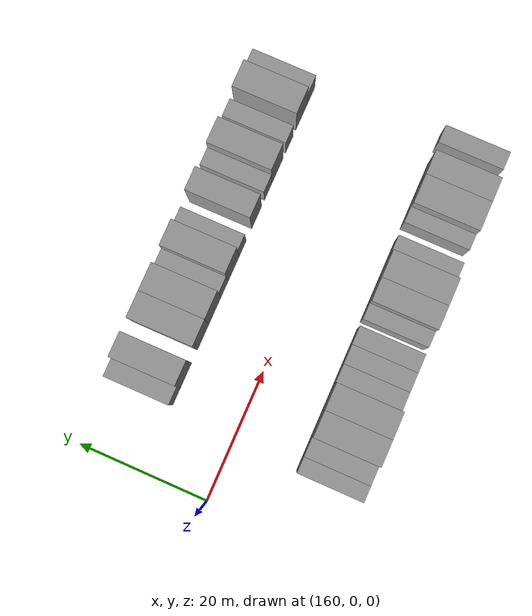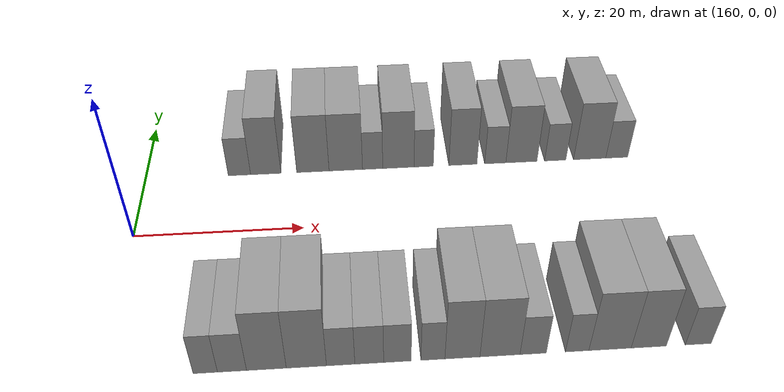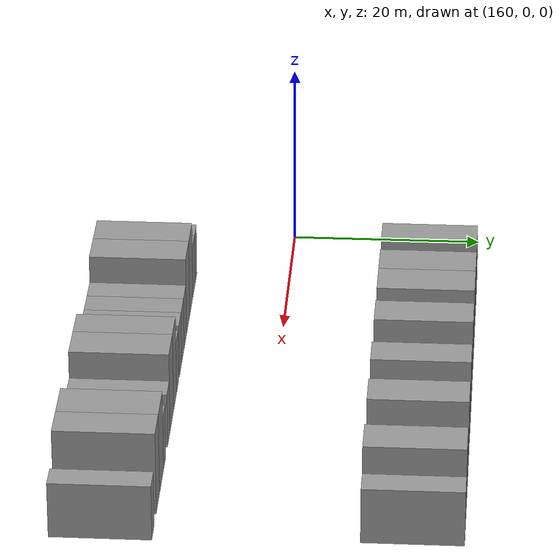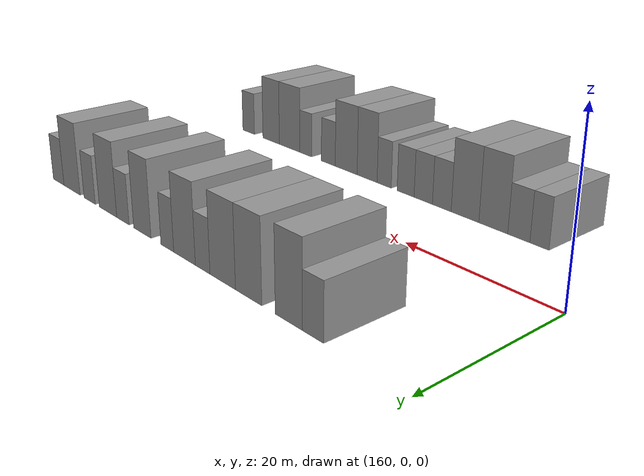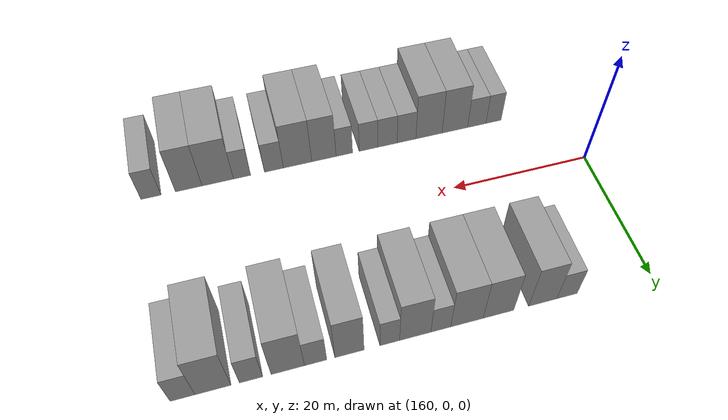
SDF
<sdf version="1.6">
 <world name="default">
  <model name="building_41">
   <static>1</static>
   <pose>171.7632 15.0000 0 0.000000 0.000000 1.570796</pose>
   <link name="link">
    <pose>0 0 3.00 0 0 0</pose>
    <collision name="collision"><geometry><box><size>10.0000 2.8186 6.0000</size></box></geometry></collision>
    <visual name="visual">
     <cast_shadows>0</cast_shadows>
     <geometry><box><size>10.0000 2.8186 6.0000</size></box></geometry>
     <material>
      <script>
       <uri>model://grey_wall/materials/scripts</uri>
       <uri>model://grey_wall/materials/textures</uri>
       <name>vrc/grey_wall</name>
      </script>
     </material>
    </visual>
   </link>
  </model>
  <model name="building_42">
   <static>1</static>
   <pose>175.0899 15.0000 0 0.000000 0.000000 1.570796</pose>
   <link name="link">
    <pose>0 0 4.50 0 0 0</pose>
    <collision name="collision"><geometry><box><size>10.0000 3.8349 9.0000</size></box></geometry></collision>
    <visual name="visual">
     <cast_shadows>0</cast_shadows>
     <geometry><box><size>10.0000 3.8349 9.0000</size></box></geometry>
     <material>
      <script>
       <uri>model://grey_wall/materials/scripts</uri>
       <uri>model://grey_wall/materials/textures</uri>
       <name>vrc/grey_wall</name>
      </script>
     </material>
    </visual>
   </link>
  </model>
  <model name="building_43">
   <static>1</static>
   <pose>181.0642 15.0000 0 0.000000 0.000000 1.570796</pose>
   <link name="link">
    <pose>0 0 4.50 0 0 0</pose>
    <collision name="collision"><geometry><box><size>10.0000 4.1136 9.0000</size></box></geometry></collision>
    <visual name="visual">
     <cast_shadows>0</cast_shadows>
     <geometry><box><size>10.0000 4.1136 9.0000</size></box></geometry>
     <material>
      <script>
       <uri>model://grey_wall/materials/scripts</uri>
       <uri>model://grey_wall/materials/textures</uri>
       <name>vrc/grey_wall</name>
      </script>
     </material>
    </visual>
   </link>
  </model>
  <model name="building_44">
   <static>1</static>
   <pose>185.2542 15.0000 0 0.000000 0.000000 1.570796</pose>
   <link name="link">
    <pose>0 0 4.50 0 0 0</pose>
    <collision name="collision"><geometry><box><size>10.0000 4.2662 9.0000</size></box></geometry></collision>
    <visual name="visual">
     <cast_shadows>0</cast_shadows>
     <geometry><box><size>10.0000 4.2662 9.0000</size></box></geometry>
     <material>
      <script>
       <uri>model://grey_wall/materials/scripts</uri>
       <uri>model://grey_wall/materials/textures</uri>
       <name>vrc/grey_wall</name>
      </script>
     </material>
    </visual>
   </link>
  </model>
  <model name="building_45">
   <static>1</static>
   <pose>188.6804 15.0000 0 0.000000 0.000000 1.570796</pose>
   <link name="link">
    <pose>0 0 3.00 0 0 0</pose>
    <collision name="collision"><geometry><box><size>10.0000 2.5863 6.0000</size></box></geometry></collision>
    <visual name="visual">
     <cast_shadows>0</cast_shadows>
     <geometry><box><size>10.0000 2.5863 6.0000</size></box></geometry>
     <material>
      <script>
       <uri>model://grey_wall/materials/scripts</uri>
       <uri>model://grey_wall/materials/textures</uri>
       <name>vrc/grey_wall</name>
      </script>
     </material>
    </visual>
   </link>
  </model>
  <model name="building_46">
   <static>1</static>
   <pose>191.9830 15.0000 0 0.000000 0.000000 1.570796</pose>
   <link name="link">
    <pose>0 0 4.50 0 0 0</pose>
    <collision name="collision"><geometry><box><size>10.0000 4.0189 9.0000</size></box></geometry></collision>
    <visual name="visual">
     <cast_shadows>0</cast_shadows>
     <geometry><box><size>10.0000 4.0189 9.0000</size></box></geometry>
     <material>
      <script>
       <uri>model://grey_wall/materials/scripts</uri>
       <uri>model://grey_wall/materials/textures</uri>
       <name>vrc/grey_wall</name>
      </script>
     </material>
    </visual>
   </link>
  </model>
  <model name="building_47">
   <static>1</static>
   <pose>195.2415 15.0000 0 0.000000 0.000000 1.570796</pose>
   <link name="link">
    <pose>0 0 3.00 0 0 0</pose>
    <collision name="collision"><geometry><box><size>10.0000 2.4981 6.0000</size></box></geometry></collision>
    <visual name="visual">
     <cast_shadows>0</cast_shadows>
     <geometry><box><size>10.0000 2.4981 6.0000</size></box></geometry>
     <material>
      <script>
       <uri>model://grey_wall/materials/scripts</uri>
       <uri>model://grey_wall/materials/textures</uri>
       <name>vrc/grey_wall</name>
      </script>
     </material>
    </visual>
   </link>
  </model>
  <model name="building_48">
   <static>1</static>
   <pose>200.3131 15.0000 0 0.000000 0.000000 1.570796</pose>
   <link name="link">
    <pose>0 0 4.50 0 0 0</pose>
    <collision name="collision"><geometry><box><size>10.0000 3.6450 9.0000</size></box></geometry></collision>
    <visual name="visual">
     <cast_shadows>0</cast_shadows>
     <geometry><box><size>10.0000 3.6450 9.0000</size></box></geometry>
     <material>
      <script>
       <uri>model://grey_wall/materials/scripts</uri>
       <uri>model://grey_wall/materials/textures</uri>
       <name>vrc/grey_wall</name>
      </script>
     </material>
    </visual>
   </link>
  </model>
  <model name="building_49">
   <static>1</static>
   <pose>204.5103 15.0000 0 0.000000 0.000000 1.570796</pose>
   <link name="link">
    <pose>0 0 3.00 0 0 0</pose>
    <collision name="collision"><geometry><box><size>10.0000 2.7494 6.0000</size></box></geometry></collision>
    <visual name="visual">
     <cast_shadows>0</cast_shadows>
     <geometry><box><size>10.0000 2.7494 6.0000</size></box></geometry>
     <material>
      <script>
       <uri>model://grey_wall/materials/scripts</uri>
       <uri>model://grey_wall/materials/textures</uri>
       <name>vrc/grey_wall</name>
      </script>
     </material>
    </visual>
   </link>
  </model>
  <model name="building_50">
   <static>1</static>
   <pose>207.9162 15.0000 0 0.000000 0.000000 1.570796</pose>
   <link name="link">
    <pose>0 0 4.50 0 0 0</pose>
    <collision name="collision"><geometry><box><size>10.0000 4.0623 9.0000</size></box></geometry></collision>
    <visual name="visual">
     <cast_shadows>0</cast_shadows>
     <geometry><box><size>10.0000 4.0623 9.0000</size></box></geometry>
     <material>
      <script>
       <uri>model://grey_wall/materials/scripts</uri>
       <uri>model://grey_wall/materials/textures</uri>
       <name>vrc/grey_wall</name>
      </script>
     </material>
    </visual>
   </link>
  </model>
  <model name="building_51">
   <static>1</static>
   <pose>212.3395 15.0000 0 0.000000 0.000000 1.570796</pose>
   <link name="link">
    <pose>0 0 3.00 0 0 0</pose>
    <collision name="collision"><geometry><box><size>10.0000 2.7843 6.0000</size></box></geometry></collision>
    <visual name="visual">
     <cast_shadows>0</cast_shadows>
     <geometry><box><size>10.0000 2.7843 6.0000</size></box></geometry>
     <material>
      <script>
       <uri>model://grey_wall/materials/scripts</uri>
       <uri>model://grey_wall/materials/textures</uri>
       <name>vrc/grey_wall</name>
      </script>
     </material>
    </visual>
   </link>
  </model>
  <model name="building_52">
   <static>1</static>
   <pose>216.8495 15.0000 0 0.000000 0.000000 1.570796</pose>
   <link name="link">
    <pose>0 0 4.50 0 0 0</pose>
    <collision name="collision"><geometry><box><size>10.0000 4.2358 9.0000</size></box></geometry></collision>
    <visual name="visual">
     <cast_shadows>0</cast_shadows>
     <geometry><box><size>10.0000 4.2358 9.0000</size></box></geometry>
     <material>
      <script>
       <uri>model://grey_wall/materials/scripts</uri>
       <uri>model://grey_wall/materials/textures</uri>
       <name>vrc/grey_wall</name>
      </script>
     </material>
    </visual>
   </link>
  </model>
  <model name="building_53">
   <static>1</static>
   <pose>220.4136 15.0000 0 0.000000 0.000000 1.570796</pose>
   <link name="link">
    <pose>0 0 3.00 0 0 0</pose>
    <collision name="collision"><geometry><box><size>10.0000 2.8923 6.0000</size></box></geometry></collision>
    <visual name="visual">
     <cast_shadows>0</cast_shadows>
     <geometry><box><size>10.0000 2.8923 6.0000</size></box></geometry>
     <material>
      <script>
       <uri>model://grey_wall/materials/scripts</uri>
       <uri>model://grey_wall/materials/textures</uri>
       <name>vrc/grey_wall</name>
      </script>
     </material>
    </visual>
   </link>
  </model>
  <model name="building_96">
   <static>1</static>
   <pose>170.2436 -15.0000 0 0.000000 0.000000 1.570796</pose>
   <link name="link">
    <pose>0 0 3.00 0 0 0</pose>
    <collision name="collision"><geometry><box><size>10.0000 2.4434 6.0000</size></box></geometry></collision>
    <visual name="visual">
     <cast_shadows>0</cast_shadows>
     <geometry><box><size>10.0000 2.4434 6.0000</size></box></geometry>
     <material>
      <script>
       <uri>model://grey_wall/materials/scripts</uri>
       <uri>model://grey_wall/materials/textures</uri>
       <name>vrc/grey_wall</name>
      </script>
     </material>
    </visual>
   </link>
  </model>
  <model name="building_97">
   <static>1</static>
   <pose>172.9290 -15.0000 0 0.000000 0.000000 1.570796</pose>
   <link name="link">
    <pose>0 0 3.00 0 0 0</pose>
    <collision name="collision"><geometry><box><size>10.0000 2.9273 6.0000</size></box></geometry></collision>
    <visual name="visual">
     <cast_shadows>0</cast_shadows>
     <geometry><box><size>10.0000 2.9273 6.0000</size></box></geometry>
     <material>
      <script>
       <uri>model://grey_wall/materials/scripts</uri>
       <uri>model://grey_wall/materials/textures</uri>
       <name>vrc/grey_wall</name>
      </script>
     </material>
    </visual>
   </link>
  </model>
  <model name="building_98">
   <static>1</static>
   <pose>176.4029 -15.0000 0 0.000000 0.000000 1.570796</pose>
   <link name="link">
    <pose>0 0 4.50 0 0 0</pose>
    <collision name="collision"><geometry><box><size>10.0000 4.0204 9.0000</size></box></geometry></collision>
    <visual name="visual">
     <cast_shadows>0</cast_shadows>
     <geometry><box><size>10.0000 4.0204 9.0000</size></box></geometry>
     <material>
      <script>
       <uri>model://grey_wall/materials/scripts</uri>
       <uri>model://grey_wall/materials/textures</uri>
       <name>vrc/grey_wall</name>
      </script>
     </material>
    </visual>
   </link>
  </model>
  <model name="building_99">
   <static>1</static>
   <pose>180.4525 -15.0000 0 0.000000 0.000000 1.570796</pose>
   <link name="link">
    <pose>0 0 4.50 0 0 0</pose>
    <collision name="collision"><geometry><box><size>10.0000 4.0789 9.0000</size></box></geometry></collision>
    <visual name="visual">
     <cast_shadows>0</cast_shadows>
     <geometry><box><size>10.0000 4.0789 9.0000</size></box></geometry>
     <material>
      <script>
       <uri>model://grey_wall/materials/scripts</uri>
       <uri>model://grey_wall/materials/textures</uri>
       <name>vrc/grey_wall</name>
      </script>
     </material>
    </visual>
   </link>
  </model>
  <model name="building_100">
   <static>1</static>
   <pose>183.9404 -15.0000 0 0.000000 0.000000 1.570796</pose>
   <link name="link">
    <pose>0 0 3.00 0 0 0</pose>
    <collision name="collision"><geometry><box><size>10.0000 2.8969 6.0000</size></box></geometry></collision>
    <visual name="visual">
     <cast_shadows>0</cast_shadows>
     <geometry><box><size>10.0000 2.8969 6.0000</size></box></geometry>
     <material>
      <script>
       <uri>model://grey_wall/materials/scripts</uri>
       <uri>model://grey_wall/materials/textures</uri>
       <name>vrc/grey_wall</name>
      </script>
     </material>
    </visual>
   </link>
  </model>
  <model name="building_101">
   <static>1</static>
   <pose>186.8614 -15.0000 0 0.000000 0.000000 1.570796</pose>
   <link name="link">
    <pose>0 0 3.00 0 0 0</pose>
    <collision name="collision"><geometry><box><size>10.0000 2.9450 6.0000</size></box></geometry></collision>
    <visual name="visual">
     <cast_shadows>0</cast_shadows>
     <geometry><box><size>10.0000 2.9450 6.0000</size></box></geometry>
     <material>
      <script>
       <uri>model://grey_wall/materials/scripts</uri>
       <uri>model://grey_wall/materials/textures</uri>
       <name>vrc/grey_wall</name>
      </script>
     </material>
    </visual>
   </link>
  </model>
  <model name="building_102">
   <static>1</static>
   <pose>189.7482 -15.0000 0 0.000000 0.000000 1.570796</pose>
   <link name="link">
    <pose>0 0 3.00 0 0 0</pose>
    <collision name="collision"><geometry><box><size>10.0000 2.8286 6.0000</size></box></geometry></collision>
    <visual name="visual">
     <cast_shadows>0</cast_shadows>
     <geometry><box><size>10.0000 2.8286 6.0000</size></box></geometry>
     <material>
      <script>
       <uri>model://grey_wall/materials/scripts</uri>
       <uri>model://grey_wall/materials/textures</uri>
       <name>vrc/grey_wall</name>
      </script>
     </material>
    </visual>
   </link>
  </model>
  <model name="building_103">
   <static>1</static>
   <pose>193.3975 -15.0000 0 0.000000 0.000000 1.570796</pose>
   <link name="link">
    <pose>0 0 3.00 0 0 0</pose>
    <collision name="collision"><geometry><box><size>10.0000 2.4700 6.0000</size></box></geometry></collision>
    <visual name="visual">
     <cast_shadows>0</cast_shadows>
     <geometry><box><size>10.0000 2.4700 6.0000</size></box></geometry>
     <material>
      <script>
       <uri>model://grey_wall/materials/scripts</uri>
       <uri>model://grey_wall/materials/textures</uri>
       <name>vrc/grey_wall</name>
      </script>
     </material>
    </visual>
   </link>
  </model>
  <model name="building_104">
   <static>1</static>
   <pose>196.4453 -15.0000 0 0.000000 0.000000 1.570796</pose>
   <link name="link">
    <pose>0 0 4.50 0 0 0</pose>
    <collision name="collision"><geometry><box><size>10.0000 3.6256 9.0000</size></box></geometry></collision>
    <visual name="visual">
     <cast_shadows>0</cast_shadows>
     <geometry><box><size>10.0000 3.6256 9.0000</size></box></geometry>
     <material>
      <script>
       <uri>model://grey_wall/materials/scripts</uri>
       <uri>model://grey_wall/materials/textures</uri>
       <name>vrc/grey_wall</name>
      </script>
     </material>
    </visual>
   </link>
  </model>
  <model name="building_105">
   <static>1</static>
   <pose>200.3413 -15.0000 0 0.000000 0.000000 1.570796</pose>
   <link name="link">
    <pose>0 0 4.50 0 0 0</pose>
    <collision name="collision"><geometry><box><size>10.0000 4.1664 9.0000</size></box></geometry></collision>
    <visual name="visual">
     <cast_shadows>0</cast_shadows>
     <geometry><box><size>10.0000 4.1664 9.0000</size></box></geometry>
     <material>
      <script>
       <uri>model://grey_wall/materials/scripts</uri>
       <uri>model://grey_wall/materials/textures</uri>
       <name>vrc/grey_wall</name>
      </script>
     </material>
    </visual>
   </link>
  </model>
  <model name="building_106">
   <static>1</static>
   <pose>203.7994 -15.0000 0 0.000000 0.000000 1.570796</pose>
   <link name="link">
    <pose>0 0 3.00 0 0 0</pose>
    <collision name="collision"><geometry><box><size>10.0000 2.7497 6.0000</size></box></geometry></collision>
    <visual name="visual">
     <cast_shadows>0</cast_shadows>
     <geometry><box><size>10.0000 2.7497 6.0000</size></box></geometry>
     <material>
      <script>
       <uri>model://grey_wall/materials/scripts</uri>
       <uri>model://grey_wall/materials/textures</uri>
       <name>vrc/grey_wall</name>
      </script>
     </material>
    </visual>
   </link>
  </model>
  <model name="building_107">
   <static>1</static>
   <pose>208.4037 -15.0000 0 0.000000 0.000000 1.570796</pose>
   <link name="link">
    <pose>0 0 3.00 0 0 0</pose>
    <collision name="collision"><geometry><box><size>10.0000 2.4590 6.0000</size></box></geometry></collision>
    <visual name="visual">
     <cast_shadows>0</cast_shadows>
     <geometry><box><size>10.0000 2.4590 6.0000</size></box></geometry>
     <material>
      <script>
       <uri>model://grey_wall/materials/scripts</uri>
       <uri>model://grey_wall/materials/textures</uri>
       <name>vrc/grey_wall</name>
      </script>
     </material>
    </visual>
   </link>
  </model>
  <model name="building_108">
   <static>1</static>
   <pose>211.8627 -15.0000 0 0.000000 0.000000 1.570796</pose>
   <link name="link">
    <pose>0 0 4.50 0 0 0</pose>
    <collision name="collision"><geometry><box><size>10.0000 4.4590 9.0000</size></box></geometry></collision>
    <visual name="visual">
     <cast_shadows>0</cast_shadows>
     <geometry><box><size>10.0000 4.4590 9.0000</size></box></geometry>
     <material>
      <script>
       <uri>model://grey_wall/materials/scripts</uri>
       <uri>model://grey_wall/materials/textures</uri>
       <name>vrc/grey_wall</name>
      </script>
     </material>
    </visual>
   </link>
  </model>
  <model name="building_109">
   <static>1</static>
   <pose>215.9589 -15.0000 0 0.000000 0.000000 1.570796</pose>
   <link name="link">
    <pose>0 0 4.50 0 0 0</pose>
    <collision name="collision"><geometry><box><size>10.0000 3.7336 9.0000</size></box></geometry></collision>
    <visual name="visual">
     <cast_shadows>0</cast_shadows>
     <geometry><box><size>10.0000 3.7336 9.0000</size></box></geometry>
     <material>
      <script>
       <uri>model://grey_wall/materials/scripts</uri>
       <uri>model://grey_wall/materials/textures</uri>
       <name>vrc/grey_wall</name>
      </script>
     </material>
    </visual>
   </link>
  </model>
  <model name="building_110">
   <static>1</static>
   <pose>221.2120 -15.0000 0 0.000000 0.000000 1.570796</pose>
   <link name="link">
    <pose>0 0 3.00 0 0 0</pose>
    <collision name="collision"><geometry><box><size>10.0000 2.7726 6.0000</size></box></geometry></collision>
    <visual name="visual">
     <cast_shadows>0</cast_shadows>
     <geometry><box><size>10.0000 2.7726 6.0000</size></box></geometry>
     <material>
      <script>
       <uri>model://grey_wall/materials/scripts</uri>
       <uri>model://grey_wall/materials/textures</uri>
       <name>vrc/grey_wall</name>
      </script>
     </material>
    </visual>
   </link>
  </model>
 </world>
</sdf>
